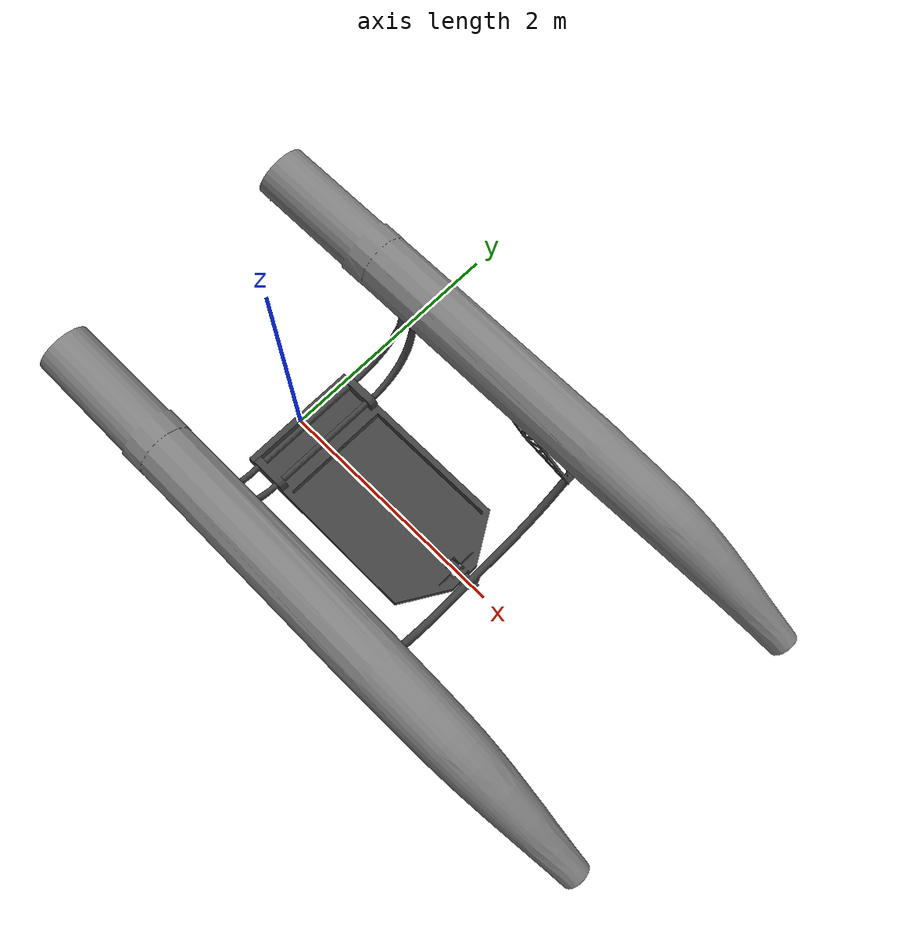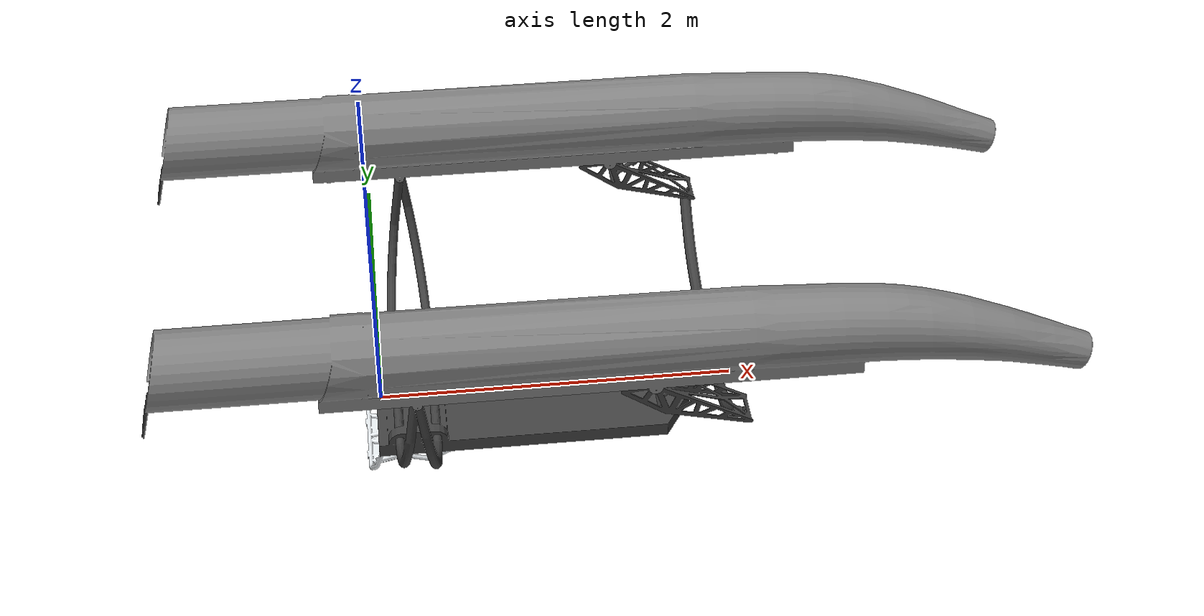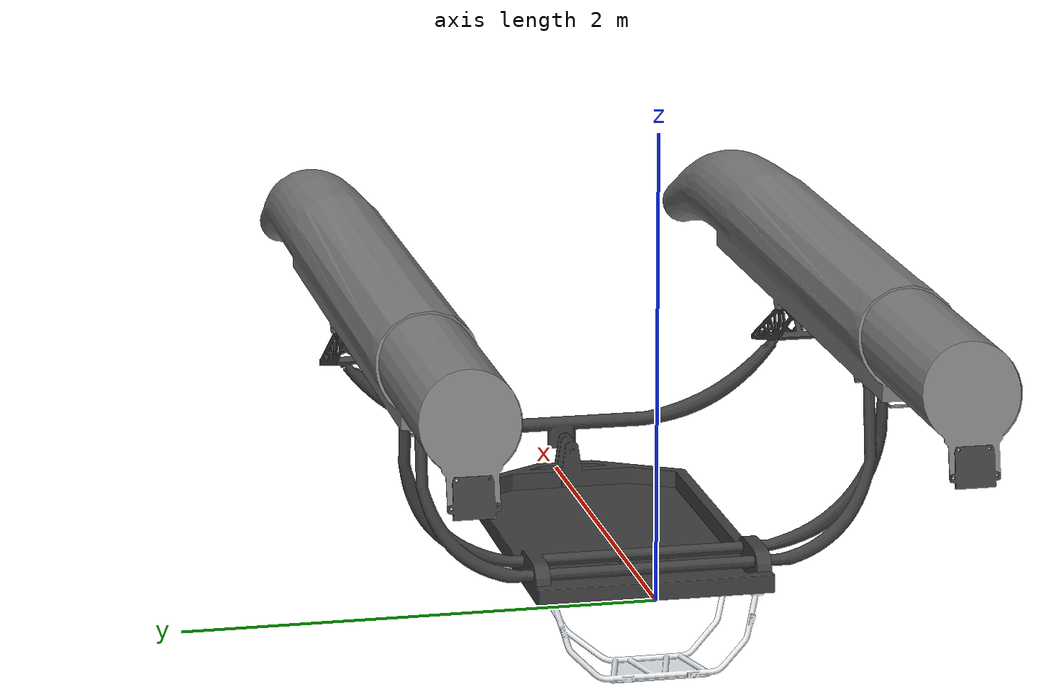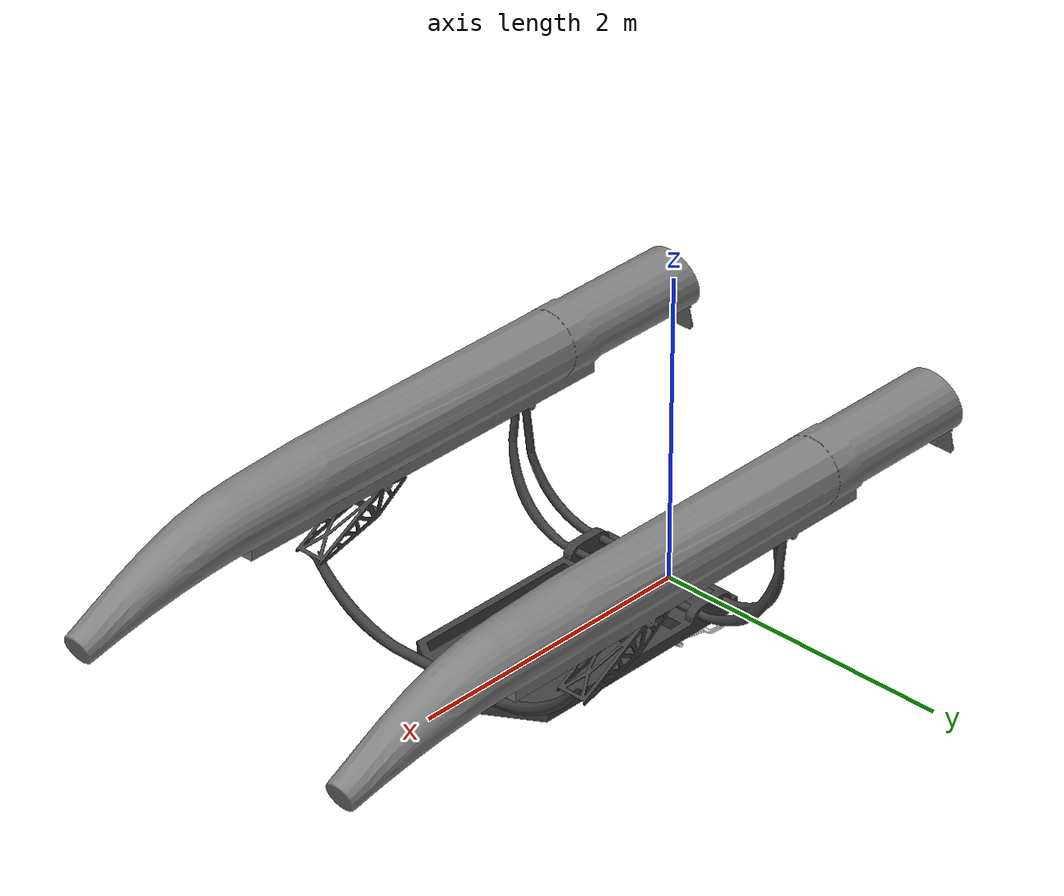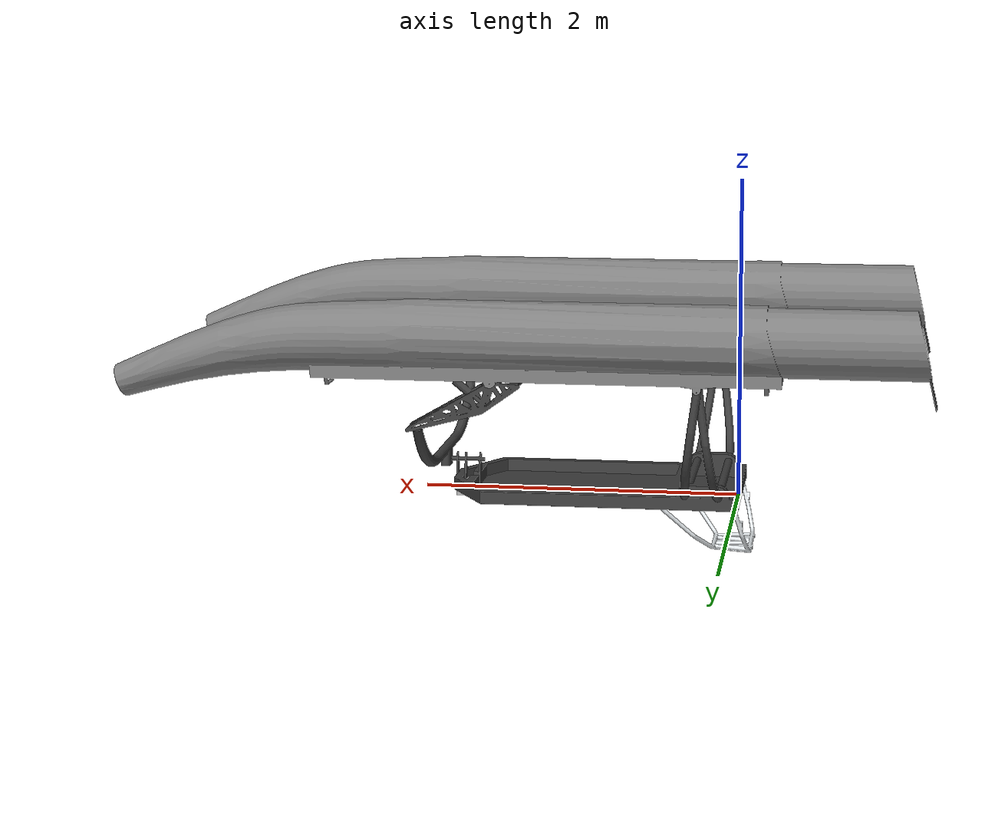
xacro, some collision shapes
<?xml version="1.0"?>
<robot xmlns:xacro="http://www.ros.org/wiki/xacro" name="wamv">
    <link
    name="Ship">
    <inertial>
      <origin
        xyz="-1.17919360537082 -9.06148303321118E-15 0.860343730008724"
        rpy="0 0 0" />
      <mass
        value="0.343059128131349" />
      <inertia
        ixx="0.347516126809009"
        ixy="-3.37337695186157E-15"
        ixz="-8.26085664640087E-29"
        iyy="2.41148850167688E-28"
        iyz="-8.51011003765077E-15"
        izz="0.347516126809009" />
    </inertial>
    <visual>
      <origin
        xyz="0 0 0"
        rpy="0 0 0" />
      <geometry>
        <mesh
          filename="package://usv16/meshes/wamv/Ship.STL" />
      </geometry>
      <material
        name="">
        <color
          rgba="0.250980392156863 0.250980392156863 0.250980392156863 1" />
      </material>
    </visual>
    <collision>
      <origin
        xyz="0 0 0"
        rpy="0 0 0" />
      <geometry>
        <mesh
          filename="package://usv16/meshes/wamv/Ship.STL" />
      </geometry>
    </collision>
  </link>
  <link
    name="port_pontoon">
    <inertial>
      <origin
        xyz="0.667982797846472 -1.00650215302528 1.11848323057473"
        rpy="0 0 0" />
      <mass
        value="862.145825161632" />
      <inertia
        ixx="1.71623425106692"
        ixy="0.018316543228869"
        ixz="12.9964386976976"
        iyy="918.61395026534"
        iyz="9.45491027828628E-05"
        izz="916.897716909836" />
    </inertial>
    <visual>
      <origin
        xyz="0 0 0"
        rpy="0 0 0" />
      <geometry>
        <mesh
          filename="package://usv16/meshes/wamv/port_pontoon.STL" />
      </geometry>
      <material
        name="">
        <color
          rgba="0.501960784313725 0.501960784313725 0.501960784313725 1" />
      </material>
    </visual>
    <collision>
      <origin
        xyz="0 0 0"
        rpy="0 0 0" />
      <geometry>
        <mesh
          filename="package://usv16/meshes/wamv/port_pontoon.STL" />
      </geometry>
    </collision>
  </link>
  <joint
    name="port_pontoon_link"
    type="fixed">
    <origin
      xyz="0 0 0"
      rpy="0 0 0" />
    <parent
      link="Ship" />
    <child
      link="port_pontoon" />
    <axis
      xyz="0 0 0" />
  </joint>
  <link
    name="starboard_pontoon">
    <inertial>
      <origin
        xyz="0.667982797837398 1.00644784697614 1.118483230571"
        rpy="0 0 0" />
      <mass
        value="862.145825176159" />
      <inertia
        ixx="1.71623425178722"
        ixy="0.0183165425566769"
        ixz="12.9964386963807"
        iyy="918.613950253061"
        iyz="9.45493434948458E-05"
        izz="916.897716896838" />
    </inertial>
    <visual>
      <origin
        xyz="0 0 0"
        rpy="0 0 0" />
      <geometry>
        <mesh
          filename="package://usv16/meshes/wamv/starboard_pontoon.STL" />
      </geometry>
      <material
        name="">
        <color
          rgba="0.501960784313725 0.501960784313725 0.501960784313725 1" />
      </material>
    </visual>
    <collision>
      <origin
        xyz="0 0 0"
        rpy="0 0 0" />
      <geometry>
        <mesh
          filename="package://usv16/meshes/wamv/starboard_pontoon.STL" />
      </geometry>
    </collision>
  </link>
  <joint
    name="starboard_pontoon_link"
    type="fixed">
    <origin
      xyz="0 0 0"
      rpy="0 0 0" />
    <parent
      link="Ship" />
    <child
      link="starboard_pontoon" />
    <axis
      xyz="0 0 0" />
  </joint>
  <link
    name="front_arm">
    <inertial>
      <origin
        xyz="1.78456755758353 8.60883452266556E-05 0.433239010214825"
        rpy="0 0 0" />
      <mass
        value="11.0653783507108" />
      <inertia
        ixx="3.48329675459449"
        ixy="0.00416397529788845"
        ixz="0.327721493095144"
        iyy="0.701729726060603"
        iyz="0.00426085885690877"
        izz="3.25432953655983" />
    </inertial>
    <visual>
      <origin
        xyz="0 0 0"
        rpy="0 0 0" />
      <geometry>
        <mesh
          filename="package://usv16/meshes/wamv/front_arm.STL" />
      </geometry>
      <material
        name="">
        <color
          rgba="0.250980392156863 0.250980392156863 0.250980392156863 1" />
      </material>
    </visual>
    <collision>
      <origin
        xyz="0 0 0"
        rpy="0 0 0" />
      <geometry>
        <mesh
          filename="package://usv16/meshes/wamv/front_arm.STL" />
      </geometry>
    </collision>
  </link>
  <joint
    name="front_arm_link"
    type="fixed">
    <origin
      xyz="0 0 0"
      rpy="0 0 0" />
    <parent
      link="Ship" />
    <child
      link="front_arm" />
    <axis
      xyz="0 0 0" />
  </joint>
  <link
    name="back_arm">
    <inertial>
      <origin
        xyz="0.196024057121332 -0.00126533224415047 0.306308764986796"
        rpy="0 0 0" />
      <mass
        value="13.9035526076094" />
      <inertia
        ixx="0.0170110170296931"
        ixy="0.00196861747276408"
        ixz="-0.00153977989031901"
        iyy="0.0825656581724545"
        iyz="3.0112194497348E-05"
        izz="0.091728399399986" />
    </inertial>
    <visual>
      <origin
        xyz="0 0 0"
        rpy="0 0 0" />
      <geometry>
        <mesh
          filename="package://usv16/meshes/wamv/back_arm.STL" />
      </geometry>
      <material
        name="">
        <color
          rgba="0.250980392156863 0.250980392156863 0.250980392156863 1" />
      </material>
    </visual>
    <collision>
      <origin
        xyz="0 0 0"
        rpy="0 0 0" />
      <geometry>
        <mesh
          filename="package://usv16/meshes/wamv/back_arm.STL" />
      </geometry>
    </collision>
  </link>
  <joint
    name="back_arm_link"
    type="fixed">
    <origin
      xyz="0 0 0"
      rpy="0 0 0" />
    <parent
      link="Ship" />
    <child
      link="back_arm" />
    <axis
      xyz="0 0 0" />
  </joint>
  <link
    name="platform">
    <inertial>
      <origin
        xyz="0.788384783792086 9.45304951461926E-09 0.0473591264239022"
        rpy="0 0 0" />
      <mass
        value="33.4284154923077" />
      <inertia
        ixx="0.00273377542516193"
        ixy="1.45151924850804E-09"
        ixz="-0.0203816574903959"
        iyy="0.154689184136618"
        iyz="1.94691116391814E-10"
        izz="0.151955408711456" />
    </inertial>
    <visual>
      <origin
        xyz="0 0 0"
        rpy="0 0 0" />
      <geometry>
        <mesh
          filename="package://usv16/meshes/wamv/platform.STL" />
      </geometry>
      <material
        name="">
        <color
          rgba="0.250980392156863 0.250980392156863 0.250980392156863 1" />
      </material>
    </visual>
    <collision>
      <origin
        xyz="0 0 0"
        rpy="0 0 0" />
      <geometry>
        <mesh
          filename="package://usv16/meshes/wamv/platform.STL" />
      </geometry>
    </collision>
  </link>
  <joint
    name="platform_link"
    type="fixed">
    <origin
      xyz="0 0 0"
      rpy="0 0 0" />
    <parent
      link="Ship" />
    <child
      link="platform" />
    <axis
      xyz="0 0 0" />
  </joint>
  <link
    name="owls_nest">
    <inertial>
      <origin
        xyz="0.0740681931076682 -7.79969530188682E-05 -0.240224715486504"
        rpy="0 0 0" />
      <mass
        value="3.13802430797467" />
      <inertia
        ixx="0.0696830743963967"
        ixy="7.01071827526787E-05"
        ixz="-0.0143516867734258"
        iyy="0.0769970584322021"
        iyz="7.10722835819185E-06"
        izz="0.106370940177521" />
    </inertial>
    <visual>
      <origin
        xyz="0 0 0"
        rpy="0 0 0" />
      <geometry>
        <mesh
          filename="package://usv16/meshes/wamv/owls_nest.STL" />
      </geometry>
      <material
        name="">
        <color
          rgba="0.898039215686275 0.917647058823529 0.929411764705882 1" />
      </material>
    </visual>
    <collision>
      <origin
        xyz="0 0 0"
        rpy="0 0 0" />
      <geometry>
        <mesh
          filename="package://usv16/meshes/wamv/owls_nest.STL" />
      </geometry>
    </collision>
  </link>
  <joint
    name="owls_nest_link"
    type="fixed">
    <origin
      xyz="0 0 0"
      rpy="0 0 0" />
    <parent
      link="Ship" />
    <child
      link="owls_nest" />
    <axis
      xyz="0 0 0" />
  </joint>

 <xacro:include filename="$(find usv16)/urdf/Hokuyo.urdf.xacro"/>
  <joint name="hokuyo_joint" type="fixed">
    <axis xyz="0 1 0" />
    <origin xyz="1.75 0 0" rpy="0 0 0"/>
    <parent link="platform"/>
    <child link="hokuyo_link"/>
  </joint>

  <!-- Hokuyo Laser -->
  <link name="hokuyo_link">
    <collision>
      <origin xyz="0 0 0" rpy="0 0 0"/>
      <geometry>
        <box size="0.1 0.1 0.1"/>
      </geometry>
    </collision>

    <visual>
      <origin xyz="0 0 0" rpy="0 0 0"/>
      <geometry>
        <mesh filename="package://usv16/meshes/hokuyo.dae"/>
      </geometry>
    </visual>

    <inertial>
      <mass value="1e-5" />
      <origin xyz="0 0 0" rpy="0 0 0"/>
      <inertia ixx="1e-6" ixy="0" ixz="0" iyy="1e-6" iyz="0" izz="1e-6" />
    </inertial>
  </link>
</robot>
